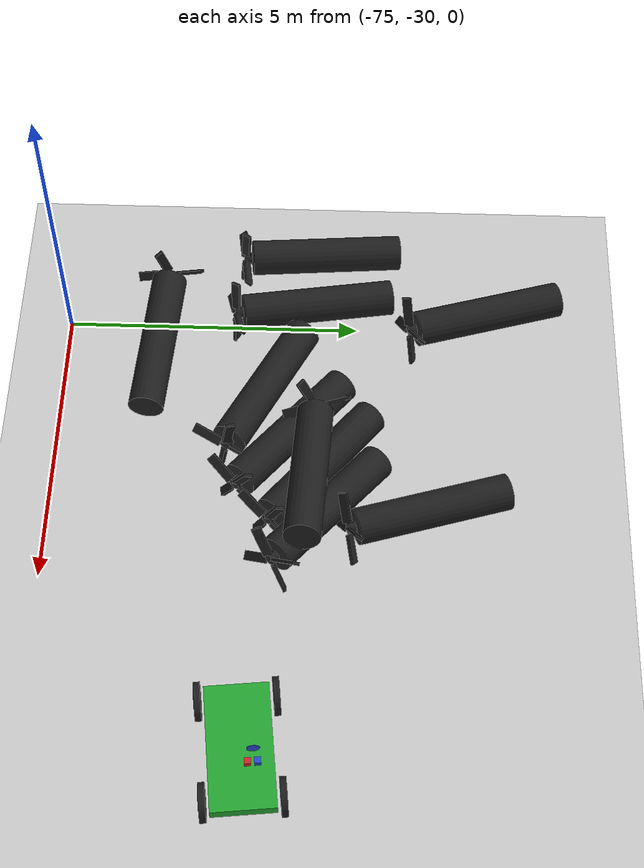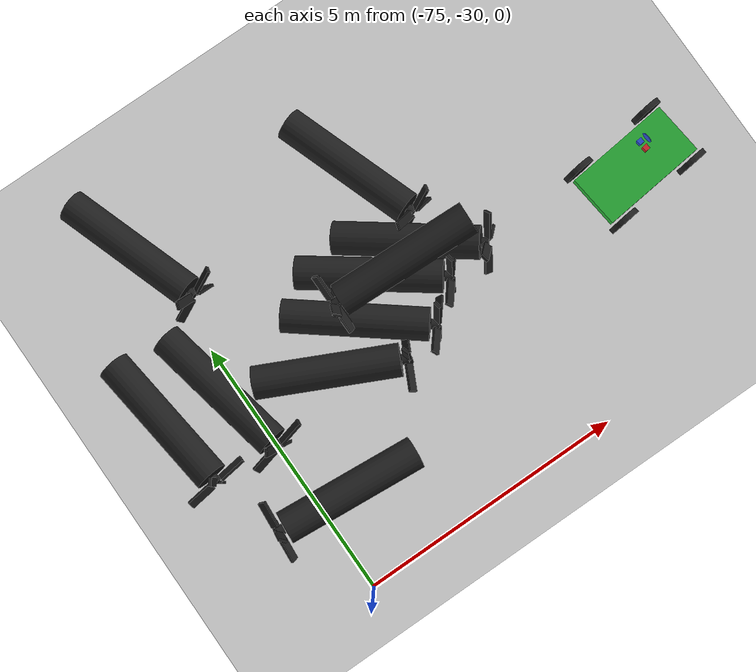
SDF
<sdf version="1.7">
 <world name="default">
  <model name="ground_plane">
   <static>1</static>
   <link name="link">
    <collision name="collision">
     <geometry><plane><normal>0 0 1</normal><size>100 100</size></plane></geometry>
     <surface><friction><ode><mu>100</mu><mu2>50</mu2></ode></friction></surface>
    </collision>
    <visual name="visual">
     <cast_shadows>0</cast_shadows>
     <geometry><plane><normal>0 0 1</normal><size>100 100</size></plane></geometry>
     <material>
      <script><uri>file://media/materials/scripts/gazebo.material</uri><name>Gazebo/Grey</name></script>
     </material>
    </visual>
   </link>
  </model>
  <model name="car_1">
   <link name="chassis">
    <pose>0 0 0.3 0 -0 0</pose>
    <collision name="collision"><geometry><box><size>2 1 0.2</size></box></geometry></collision>
    <visual name="visual">
     <geometry><box><size>2 1 0.2</size></box></geometry>
     <material>
      <script><uri>file://media/materials/scripts/gazebo.material</uri><name>Gazebo/Green</name></script>
     </material>
    </visual>
    <inertial>
     <inertia><ixx>1</ixx><ixy>0</ixy><ixz>0</ixz><iyy>1</iyy><iyz>0</iyz><izz>1</izz></inertia>
     <mass>1</mass>
    </inertial>
   </link>
   <link name="front_left_wheel">
    <pose>0.8 0.6 0.3 -0 1.5707 1.5707</pose>
    <collision name="collision">
     <geometry><cylinder><radius>0.3</radius><length>0.1</length></cylinder></geometry>
    </collision>
    <visual name="visual">
     <geometry><cylinder><radius>0.3</radius><length>0.1</length></cylinder></geometry>
     <material>
      <script><uri>file://media/materials/scripts/gazebo.material</uri><name>Gazebo/Black</name></script>
     </material>
    </visual>
    <inertial>
     <inertia><ixx>1</ixx><ixy>0</ixy><ixz>0</ixz><iyy>1</iyy><iyz>0</iyz><izz>1</izz></inertia>
     <mass>1</mass>
    </inertial>
   </link>
   <link name="front_right_wheel">
    <pose>0.8 -0.6 0.3 -0 1.5707 1.5707</pose>
    <collision name="collision">
     <geometry><cylinder><radius>0.3</radius><length>0.1</length></cylinder></geometry>
    </collision>
    <visual name="visual">
     <geometry><cylinder><radius>0.3</radius><length>0.1</length></cylinder></geometry>
     <material>
      <script><uri>file://media/materials/scripts/gazebo.material</uri><name>Gazebo/Black</name></script>
     </material>
    </visual>
    <inertial>
     <inertia><ixx>1</ixx><ixy>0</ixy><ixz>0</ixz><iyy>1</iyy><iyz>0</iyz><izz>1</izz></inertia>
     <mass>1</mass>
    </inertial>
   </link>
   <link name="back_right_wheel">
    <pose>-0.8 -0.6 0.3 -0 1.5707 1.5707</pose>
    <collision name="collision">
     <geometry><cylinder><radius>0.3</radius><length>0.1</length></cylinder></geometry>
    </collision>
    <visual name="visual">
     <geometry><cylinder><radius>0.3</radius><length>0.1</length></cylinder></geometry>
     <material>
      <script><uri>file://media/materials/scripts/gazebo.material</uri><name>Gazebo/Black</name></script>
     </material>
    </visual>
    <inertial>
     <inertia><ixx>1</ixx><ixy>0</ixy><ixz>0</ixz><iyy>1</iyy><iyz>0</iyz><izz>1</izz></inertia>
     <mass>1</mass>
    </inertial>
   </link>
   <link name="back_left_wheel">
    <pose>-0.8 0.6 0.3 -0 1.5707 1.5707</pose>
    <collision name="collision">
     <geometry><cylinder><radius>0.3</radius><length>0.1</length></cylinder></geometry>
    </collision>
    <visual name="visual">
     <geometry><cylinder><radius>0.3</radius><length>0.1</length></cylinder></geometry>
     <material>
      <script><uri>file://media/materials/scripts/gazebo.material</uri><name>Gazebo/Black</name></script>
     </material>
    </visual>
    <inertial>
     <inertia><ixx>1</ixx><ixy>0</ixy><ixz>0</ixz><iyy>1</iyy><iyz>0</iyz><izz>1</izz></inertia>
     <mass>1</mass>
    </inertial>
   </link>
   <link name="gas_pedal">
    <pose>0.3 0.1 0.5 0 -0 0</pose>
    <collision name="collision"><geometry><box><size>0.1 0.1 0.1</size></box></geometry></collision>
    <visual name="visual">
     <geometry><box><size>0.1 0.1 0.1</size></box></geometry>
     <material>
      <script><uri>file://media/materials/scripts/gazebo.material</uri><name>Gazebo/Red</name></script>
     </material>
    </visual>
    <inertial>
     <inertia><ixx>1</ixx><ixy>0</ixy><ixz>0</ixz><iyy>1</iyy><iyz>0</iyz><izz>1</izz></inertia>
     <mass>1</mass>
    </inertial>
   </link>
   <link name="brake_pedal">
    <pose>0.3 0.25 0.5 0 -0 0</pose>
    <collision name="collision"><geometry><box><size>0.1 0.1 0.1</size></box></geometry></collision>
    <visual name="visual">
     <geometry><box><size>0.1 0.1 0.1</size></box></geometry>
     <material>
      <script><uri>file://media/materials/scripts/gazebo.material</uri><name>Gazebo/Blue</name></script>
     </material>
    </visual>
    <inertial>
     <inertia><ixx>1</ixx><ixy>0</ixy><ixz>0</ixz><iyy>1</iyy><iyz>0</iyz><izz>1</izz></inertia>
     <mass>1</mass>
    </inertial>
   </link>
   <link name="steering_wheel">
    <pose>0.3 0.2 1 0 1.5707 0</pose>
    <collision name="collision">
     <geometry><cylinder><radius>0.1</radius><length>0.01</length></cylinder></geometry>
    </collision>
    <visual name="visual">
     <geometry><cylinder><radius>0.1</radius><length>0.01</length></cylinder></geometry>
     <material>
      <script><uri>file://media/materials/scripts/gazebo.material</uri><name>Gazebo/Blue</name></script>
     </material>
    </visual>
    <inertial>
     <inertia><ixx>1</ixx><ixy>0</ixy><ixz>0</ixz><iyy>1</iyy><iyz>0</iyz><izz>1</izz></inertia>
     <mass>1</mass>
    </inertial>
   </link>
   <joint name="gas_joint" type="prismatic">
    <parent>chassis</parent>
    <child>gas_pedal</child>
    <axis>
     <xyz expressed_in="__model__">1 0 0</xyz>
     <limit><lower>0</lower><upper>0.2</upper></limit>
     <dynamics><spring_reference>0</spring_reference><spring_stiffness>0</spring_stiffness></dynamics>
    </axis>
   </joint>
   <joint name="brake_joint" type="prismatic">
    <parent>chassis</parent>
    <child>brake_pedal</child>
    <axis>
     <xyz expressed_in="__model__">1 0 0</xyz>
     <limit><lower>0</lower><upper>0.2</upper></limit>
     <dynamics><spring_reference>0</spring_reference><spring_stiffness>0</spring_stiffness></dynamics>
    </axis>
   </joint>
   <joint name="steering_joint" type="revolute">
    <parent>chassis</parent>
    <child>steering_wheel</child>
    <axis>
     <xyz expressed_in="__model__">1 0 0</xyz>
     <limit><lower>-7.853</lower><upper>7.853</upper></limit>
     <dynamics><spring_reference>0</spring_reference><spring_stiffness>0</spring_stiffness></dynamics>
    </axis>
   </joint>
   <joint name="front_left_joint" type="revolute2">
    <parent>chassis</parent>
    <child>front_left_wheel</child>
    <axis>
     <xyz expressed_in="__model__">0 0 1</xyz>
     <limit><lower>8.06786e-05</lower><upper>8.06786e-05</upper></limit>
     <dynamics><spring_reference>0</spring_reference><spring_stiffness>0</spring_stiffness></dynamics>
    </axis>
    <axis2>
     <xyz expressed_in="__model__">0 1 0</xyz>
     <limit><upper>1e+16</upper><lower>-1e+16</lower></limit>
     <dynamics><spring_reference>0</spring_reference><spring_stiffness>0</spring_stiffness></dynamics>
    </axis2>
    <physics><ode><limit><cfm>0</cfm><erp>0.9</erp></limit></ode></physics>
   </joint>
   <joint name="front_right_joint" type="revolute2">
    <parent>chassis</parent>
    <child>front_right_wheel</child>
    <axis>
     <xyz expressed_in="__model__">0 0 1</xyz>
     <limit><lower>8.06786e-05</lower><upper>8.06786e-05</upper></limit>
     <dynamics><spring_reference>0</spring_reference><spring_stiffness>0</spring_stiffness></dynamics>
    </axis>
    <axis2>
     <xyz expressed_in="__model__">0 1 0</xyz>
     <limit><upper>1e+16</upper><lower>-1e+16</lower></limit>
     <dynamics><spring_reference>0</spring_reference><spring_stiffness>0</spring_stiffness></dynamics>
    </axis2>
    <physics><ode><limit><cfm>0</cfm><erp>0.9</erp></limit></ode></physics>
   </joint>
   <joint name="back_right_joint" type="revolute2">
    <parent>chassis</parent>
    <child>back_right_wheel</child>
    <axis>
     <xyz expressed_in="__model__">0 0 1</xyz>
     <limit><lower>0</lower><upper>0</upper></limit>
     <dynamics><spring_reference>0</spring_reference><spring_stiffness>0</spring_stiffness></dynamics>
    </axis>
    <axis2>
     <xyz expressed_in="__model__">0 1 0</xyz>
     <limit><upper>1e+16</upper><lower>-1e+16</lower></limit>
     <dynamics><spring_reference>0</spring_reference><spring_stiffness>0</spring_stiffness></dynamics>
    </axis2>
    <physics><ode><limit><cfm>0</cfm><erp>0.9</erp></limit></ode></physics>
   </joint>
   <joint name="back_left_joint" type="revolute2">
    <parent>chassis</parent>
    <child>back_left_wheel</child>
    <axis>
     <xyz expressed_in="__model__">0 0 1</xyz>
     <limit><lower>0</lower><upper>0</upper></limit>
     <dynamics><spring_reference>0</spring_reference><spring_stiffness>0</spring_stiffness></dynamics>
    </axis>
    <axis2>
     <xyz expressed_in="__model__">0 1 0</xyz>
     <limit><upper>1e+16</upper><lower>-1e+16</lower></limit>
     <dynamics><spring_reference>0</spring_reference><spring_stiffness>0</spring_stiffness></dynamics>
    </axis2>
    <physics><ode><limit><cfm>0</cfm><erp>0.9</erp></limit></ode></physics>
   </joint>
   <plugin name="vehicle" filename="libVehiclePlugin.so">
    <front_left>front_left_joint</front_left>
    <front_right>front_right_joint</front_right>
    <back_left>back_left_joint</back_left>
    <back_right>back_right_joint</back_right>
    <gas>gas_joint</gas>
    <brake>brake_joint</brake>
    <steering>steering_joint</steering>
    <front_power>10</front_power>
    <rear_power>10</rear_power>
    <tire_angle_range>0.5</tire_angle_range>
    <max_speed>10</max_speed>
    <aero_load>0.1</aero_load>
   </plugin>
   <pose>-67.0244 -26.5911 0.010006 0 2e-06 0.109555</pose>
  </model>
  <model name="submarine_sinking_0">
   <pose>-70.8442 -24.7328 0.463488 1.47985 -0.776747 0.392749</pose>
   <link name="body">
    <pose>0 0 -1.07935 0 -0 0</pose>
    <inertial>
     <mass>1102.7</mass>
     <inertia><ixx>645.998</ixx><ixy>0</ixy><ixz>0</ixz><iyy>645.998</iyy><iyz>0</iyz><izz>49.6215</izz></inertia>
    </inertial>
    <visual name="body_visual">
     <geometry><cylinder><radius>0.3</radius><length>2.6</length></cylinder></geometry>
     <material>
      <script><uri>file://media/materials/scripts/gazebo.material</uri><name>Gazebo/Black</name></script>
     </material>
    </visual>
    <collision name="body_collision">
     <geometry><cylinder><radius>0.3</radius><length>2.6</length></cylinder></geometry>
    </collision>
    <visual name="spacer_visual">
     <pose>0 0 1.37855 0 -0 0</pose>
     <geometry><cylinder><radius>0.0933402</radius><length>0.127211</length></cylinder></geometry>
     <material>
      <script><uri>file://media/materials/scripts/gazebo.material</uri><name>Gazebo/Black</name></script>
     </material>
    </visual>
   </link>
   <link name="propeller">
    <pose>0 0 0.3455 3.14159 -0 0</pose>
    <inertial>
     <mass>25.2312</mass>
     <inertia><ixx>0.531907</ixx><ixy>0</ixy><ixz>0</ixz><iyy>0.531907</iyy><iyz>0</iyz><izz>1.0513</izz></inertia>
    </inertial>
    <visual name="blade1_visual">
     <pose>0.34334 0 0 0.785398 -0 0</pose>
     <geometry><box><size>0.5 0.154178 0.05455</size></box></geometry>
     <material>
      <script><uri>file://media/materials/scripts/gazebo.material</uri><name>Gazebo/Black</name></script>
     </material>
    </visual>
    <collision name="blade1_collision">
     <pose>0.34334 0 0 0.785398 -0 0</pose>
     <geometry><box><size>0.5 0.154178 0.05455</size></box></geometry>
    </collision>
    <visual name="blade2_visual">
     <pose>0 0.34334 0 0.785398 0 1.5708</pose>
     <geometry><box><size>0.5 0.154178 0.05455</size></box></geometry>
     <material>
      <script><uri>file://media/materials/scripts/gazebo.material</uri><name>Gazebo/Black</name></script>
     </material>
    </visual>
    <collision name="blade2_collision">
     <pose>0 0.34334 0 0.785398 0 1.5708</pose>
     <geometry><box><size>0.5 0.154178 0.05455</size></box></geometry>
    </collision>
    <visual name="blade3_visual">
     <pose>-0.34334 -0 0 -0.785398 0 0</pose>
     <geometry><box><size>0.5 0.154178 0.05455</size></box></geometry>
     <material>
      <script><uri>file://media/materials/scripts/gazebo.material</uri><name>Gazebo/Black</name></script>
     </material>
    </visual>
    <collision name="blade3_collision">
     <pose>-0.34334 -0 0 -0.785398 0 0</pose>
     <geometry><box><size>0.5 0.154178 0.05455</size></box></geometry>
    </collision>
    <visual name="blade4_visual">
     <pose>-0 -0.34334 0 -0.785398 -0 1.5708</pose>
     <geometry><box><size>0.5 0.154178 0.05455</size></box></geometry>
     <material>
      <script><uri>file://media/materials/scripts/gazebo.material</uri><name>Gazebo/Black</name></script>
     </material>
    </visual>
    <collision name="blade4_collision">
     <pose>-0 -0.34334 0 -0.785398 -0 1.5708</pose>
     <geometry><box><size>0.5 0.154178 0.05455</size></box></geometry>
    </collision>
   </link>
   <joint name="spinning_joint" type="revolute">
    <parent>body</parent>
    <child>propeller</child>
    <axis>
     <xyz expressed_in="__model__">0 0 1</xyz>
     <limit><lower>-1e+12</lower><upper>1e+12</upper><effort>-1</effort><velocity>-1</velocity></limit>
     <dynamics><spring_reference>0</spring_reference><spring_stiffness>0</spring_stiffness></dynamics>
    </axis>
   </joint>
   <plugin name="buoyancy" filename="libBuoyancyPlugin.so"><fluid_density>999.1026</fluid_density></plugin>
  </model>
  <model name="submarine_sinking_0_clone">
   <pose>-71.1148 -26.1575 0.511886 -1.47733 -0.41755 -2.25016</pose>
   <link name="body">
    <pose>0 0 -1.07935 0 -0 0</pose>
    <inertial>
     <mass>1102.7</mass>
     <inertia><ixx>645.998</ixx><ixy>0</ixy><ixz>0</ixz><iyy>645.998</iyy><iyz>0</iyz><izz>49.6215</izz></inertia>
    </inertial>
    <visual name="body_visual">
     <geometry><cylinder><radius>0.3</radius><length>2.6</length></cylinder></geometry>
     <material>
      <script><uri>file://media/materials/scripts/gazebo.material</uri><name>Gazebo/Black</name></script>
     </material>
    </visual>
    <collision name="body_collision">
     <geometry><cylinder><radius>0.3</radius><length>2.6</length></cylinder></geometry>
    </collision>
    <visual name="spacer_visual">
     <pose>0 0 1.37855 0 -0 0</pose>
     <geometry><cylinder><radius>0.0933402</radius><length>0.127211</length></cylinder></geometry>
     <material>
      <script><uri>file://media/materials/scripts/gazebo.material</uri><name>Gazebo/Black</name></script>
     </material>
    </visual>
   </link>
   <link name="propeller">
    <pose>0 0 0.3455 3.14159 -0 0</pose>
    <inertial>
     <mass>25.2312</mass>
     <inertia><ixx>0.531907</ixx><ixy>0</ixy><ixz>0</ixz><iyy>0.531907</iyy><iyz>0</iyz><izz>1.0513</izz></inertia>
    </inertial>
    <visual name="blade1_visual">
     <pose>0.34334 0 0 0.785398 -0 0</pose>
     <geometry><box><size>0.5 0.154178 0.05455</size></box></geometry>
     <material>
      <script><uri>file://media/materials/scripts/gazebo.material</uri><name>Gazebo/Black</name></script>
     </material>
    </visual>
    <collision name="blade1_collision">
     <pose>0.34334 0 0 0.785398 -0 0</pose>
     <geometry><box><size>0.5 0.154178 0.05455</size></box></geometry>
    </collision>
    <visual name="blade2_visual">
     <pose>0 0.34334 0 0.785398 0 1.5708</pose>
     <geometry><box><size>0.5 0.154178 0.05455</size></box></geometry>
     <material>
      <script><uri>file://media/materials/scripts/gazebo.material</uri><name>Gazebo/Black</name></script>
     </material>
    </visual>
    <collision name="blade2_collision">
     <pose>0 0.34334 0 0.785398 0 1.5708</pose>
     <geometry><box><size>0.5 0.154178 0.05455</size></box></geometry>
    </collision>
    <visual name="blade3_visual">
     <pose>-0.34334 -0 0 -0.785398 0 0</pose>
     <geometry><box><size>0.5 0.154178 0.05455</size></box></geometry>
     <material>
      <script><uri>file://media/materials/scripts/gazebo.material</uri><name>Gazebo/Black</name></script>
     </material>
    </visual>
    <collision name="blade3_collision">
     <pose>-0.34334 -0 0 -0.785398 0 0</pose>
     <geometry><box><size>0.5 0.154178 0.05455</size></box></geometry>
    </collision>
    <visual name="blade4_visual">
     <pose>-0 -0.34334 0 -0.785398 -0 1.5708</pose>
     <geometry><box><size>0.5 0.154178 0.05455</size></box></geometry>
     <material>
      <script><uri>file://media/materials/scripts/gazebo.material</uri><name>Gazebo/Black</name></script>
     </material>
    </visual>
    <collision name="blade4_collision">
     <pose>-0 -0.34334 0 -0.785398 -0 1.5708</pose>
     <geometry><box><size>0.5 0.154178 0.05455</size></box></geometry>
    </collision>
   </link>
   <joint name="spinning_joint" type="revolute">
    <parent>body</parent>
    <child>propeller</child>
    <axis>
     <xyz expressed_in="__model__">0 0 1</xyz>
     <limit><lower>-1e+12</lower><upper>1e+12</upper><effort>-1</effort><velocity>-1</velocity></limit>
     <dynamics><spring_reference>0</spring_reference><spring_stiffness>0</spring_stiffness></dynamics>
    </axis>
   </joint>
   <plugin name="buoyancy" filename="libBuoyancyPlugin.so"><fluid_density>999.1026</fluid_density></plugin>
  </model>
  <model name="submarine_sinking_0_clone_0">
   <pose>-71.7803 -26.7021 0.45906 -1.4991 -0.499068 -2.27634</pose>
   <link name="body">
    <pose>0 0 -1.07935 0 -0 0</pose>
    <inertial>
     <mass>1102.7</mass>
     <inertia><ixx>645.998</ixx><ixy>0</ixy><ixz>0</ixz><iyy>645.998</iyy><iyz>0</iyz><izz>49.6215</izz></inertia>
    </inertial>
    <visual name="body_visual">
     <geometry><cylinder><radius>0.3</radius><length>2.6</length></cylinder></geometry>
     <material>
      <script><uri>file://media/materials/scripts/gazebo.material</uri><name>Gazebo/Black</name></script>
     </material>
    </visual>
    <collision name="body_collision">
     <geometry><cylinder><radius>0.3</radius><length>2.6</length></cylinder></geometry>
    </collision>
    <visual name="spacer_visual">
     <pose>0 0 1.37855 0 -0 0</pose>
     <geometry><cylinder><radius>0.0933402</radius><length>0.127211</length></cylinder></geometry>
     <material>
      <script><uri>file://media/materials/scripts/gazebo.material</uri><name>Gazebo/Black</name></script>
     </material>
    </visual>
   </link>
   <link name="propeller">
    <pose>0 0 0.3455 3.14159 -0 0</pose>
    <inertial>
     <mass>25.2312</mass>
     <inertia><ixx>0.531907</ixx><ixy>0</ixy><ixz>0</ixz><iyy>0.531907</iyy><iyz>0</iyz><izz>1.0513</izz></inertia>
    </inertial>
    <visual name="blade1_visual">
     <pose>0.34334 0 0 0.785398 -0 0</pose>
     <geometry><box><size>0.5 0.154178 0.05455</size></box></geometry>
     <material>
      <script><uri>file://media/materials/scripts/gazebo.material</uri><name>Gazebo/Black</name></script>
     </material>
    </visual>
    <collision name="blade1_collision">
     <pose>0.34334 0 0 0.785398 -0 0</pose>
     <geometry><box><size>0.5 0.154178 0.05455</size></box></geometry>
    </collision>
    <visual name="blade2_visual">
     <pose>0 0.34334 0 0.785398 0 1.5708</pose>
     <geometry><box><size>0.5 0.154178 0.05455</size></box></geometry>
     <material>
      <script><uri>file://media/materials/scripts/gazebo.material</uri><name>Gazebo/Black</name></script>
     </material>
    </visual>
    <collision name="blade2_collision">
     <pose>0 0.34334 0 0.785398 0 1.5708</pose>
     <geometry><box><size>0.5 0.154178 0.05455</size></box></geometry>
    </collision>
    <visual name="blade3_visual">
     <pose>-0.34334 -0 0 -0.785398 0 0</pose>
     <geometry><box><size>0.5 0.154178 0.05455</size></box></geometry>
     <material>
      <script><uri>file://media/materials/scripts/gazebo.material</uri><name>Gazebo/Black</name></script>
     </material>
    </visual>
    <collision name="blade3_collision">
     <pose>-0.34334 -0 0 -0.785398 0 0</pose>
     <geometry><box><size>0.5 0.154178 0.05455</size></box></geometry>
    </collision>
    <visual name="blade4_visual">
     <pose>-0 -0.34334 0 -0.785398 -0 1.5708</pose>
     <geometry><box><size>0.5 0.154178 0.05455</size></box></geometry>
     <material>
      <script><uri>file://media/materials/scripts/gazebo.material</uri><name>Gazebo/Black</name></script>
     </material>
    </visual>
    <collision name="blade4_collision">
     <pose>-0 -0.34334 0 -0.785398 -0 1.5708</pose>
     <geometry><box><size>0.5 0.154178 0.05455</size></box></geometry>
    </collision>
   </link>
   <joint name="spinning_joint" type="revolute">
    <parent>body</parent>
    <child>propeller</child>
    <axis>
     <xyz expressed_in="__model__">0 0 1</xyz>
     <limit><lower>-1e+12</lower><upper>1e+12</upper><effort>-1</effort><velocity>-1</velocity></limit>
     <dynamics><spring_reference>0</spring_reference><spring_stiffness>0</spring_stiffness></dynamics>
    </axis>
   </joint>
   <plugin name="buoyancy" filename="libBuoyancyPlugin.so"><fluid_density>999.1026</fluid_density></plugin>
  </model>
  <model name="submarine_sinking_0_clone_1">
   <pose>-72.575 -26.9592 0.459062 -1.50707 -0.157686 -2.03511</pose>
   <link name="body">
    <pose>0 0 -1.07935 0 -0 0</pose>
    <inertial>
     <mass>1102.7</mass>
     <inertia><ixx>645.998</ixx><ixy>0</ixy><ixz>0</ixz><iyy>645.998</iyy><iyz>0</iyz><izz>49.6215</izz></inertia>
    </inertial>
    <visual name="body_visual">
     <geometry><cylinder><radius>0.3</radius><length>2.6</length></cylinder></geometry>
     <material>
      <script><uri>file://media/materials/scripts/gazebo.material</uri><name>Gazebo/Black</name></script>
     </material>
    </visual>
    <collision name="body_collision">
     <geometry><cylinder><radius>0.3</radius><length>2.6</length></cylinder></geometry>
    </collision>
    <visual name="spacer_visual">
     <pose>0 0 1.37855 0 -0 0</pose>
     <geometry><cylinder><radius>0.0933402</radius><length>0.127211</length></cylinder></geometry>
     <material>
      <script><uri>file://media/materials/scripts/gazebo.material</uri><name>Gazebo/Black</name></script>
     </material>
    </visual>
   </link>
   <link name="propeller">
    <pose>0 0 0.3455 3.14159 -0 0</pose>
    <inertial>
     <mass>25.2312</mass>
     <inertia><ixx>0.531907</ixx><ixy>0</ixy><ixz>0</ixz><iyy>0.531907</iyy><iyz>0</iyz><izz>1.0513</izz></inertia>
    </inertial>
    <visual name="blade1_visual">
     <pose>0.34334 0 0 0.785398 -0 0</pose>
     <geometry><box><size>0.5 0.154178 0.05455</size></box></geometry>
     <material>
      <script><uri>file://media/materials/scripts/gazebo.material</uri><name>Gazebo/Black</name></script>
     </material>
    </visual>
    <collision name="blade1_collision">
     <pose>0.34334 0 0 0.785398 -0 0</pose>
     <geometry><box><size>0.5 0.154178 0.05455</size></box></geometry>
    </collision>
    <visual name="blade2_visual">
     <pose>0 0.34334 0 0.785398 0 1.5708</pose>
     <geometry><box><size>0.5 0.154178 0.05455</size></box></geometry>
     <material>
      <script><uri>file://media/materials/scripts/gazebo.material</uri><name>Gazebo/Black</name></script>
     </material>
    </visual>
    <collision name="blade2_collision">
     <pose>0 0.34334 0 0.785398 0 1.5708</pose>
     <geometry><box><size>0.5 0.154178 0.05455</size></box></geometry>
    </collision>
    <visual name="blade3_visual">
     <pose>-0.34334 -0 0 -0.785398 0 0</pose>
     <geometry><box><size>0.5 0.154178 0.05455</size></box></geometry>
     <material>
      <script><uri>file://media/materials/scripts/gazebo.material</uri><name>Gazebo/Black</name></script>
     </material>
    </visual>
    <collision name="blade3_collision">
     <pose>-0.34334 -0 0 -0.785398 0 0</pose>
     <geometry><box><size>0.5 0.154178 0.05455</size></box></geometry>
    </collision>
    <visual name="blade4_visual">
     <pose>-0 -0.34334 0 -0.785398 -0 1.5708</pose>
     <geometry><box><size>0.5 0.154178 0.05455</size></box></geometry>
     <material>
      <script><uri>file://media/materials/scripts/gazebo.material</uri><name>Gazebo/Black</name></script>
     </material>
    </visual>
    <collision name="blade4_collision">
     <pose>-0 -0.34334 0 -0.785398 -0 1.5708</pose>
     <geometry><box><size>0.5 0.154178 0.05455</size></box></geometry>
    </collision>
   </link>
   <joint name="spinning_joint" type="revolute">
    <parent>body</parent>
    <child>propeller</child>
    <axis>
     <xyz expressed_in="__model__">0 0 1</xyz>
     <limit><lower>-1e+12</lower><upper>1e+12</upper><effort>-1</effort><velocity>-1</velocity></limit>
     <dynamics><spring_reference>0</spring_reference><spring_stiffness>0</spring_stiffness></dynamics>
    </axis>
   </joint>
   <plugin name="buoyancy" filename="libBuoyancyPlugin.so"><fluid_density>999.1026</fluid_density></plugin>
  </model>
  <model name="submarine_sinking_0_clone_2">
   <pose>-72.4507 -25.6581 0.948541 1.89347 -1.0975 -1.91044</pose>
   <link name="body">
    <pose>0 0 -1.07935 0 -0 0</pose>
    <inertial>
     <mass>1102.7</mass>
     <inertia><ixx>645.998</ixx><ixy>0</ixy><ixz>0</ixz><iyy>645.998</iyy><iyz>0</iyz><izz>49.6215</izz></inertia>
    </inertial>
    <visual name="body_visual">
     <geometry><cylinder><radius>0.3</radius><length>2.6</length></cylinder></geometry>
     <material>
      <script><uri>file://media/materials/scripts/gazebo.material</uri><name>Gazebo/Black</name></script>
     </material>
    </visual>
    <collision name="body_collision">
     <geometry><cylinder><radius>0.3</radius><length>2.6</length></cylinder></geometry>
    </collision>
    <visual name="spacer_visual">
     <pose>0 0 1.37855 0 -0 0</pose>
     <geometry><cylinder><radius>0.0933402</radius><length>0.127211</length></cylinder></geometry>
     <material>
      <script><uri>file://media/materials/scripts/gazebo.material</uri><name>Gazebo/Black</name></script>
     </material>
    </visual>
   </link>
   <link name="propeller">
    <pose>0 0 0.3455 3.14159 -0 0</pose>
    <inertial>
     <mass>25.2312</mass>
     <inertia><ixx>0.531907</ixx><ixy>0</ixy><ixz>0</ixz><iyy>0.531907</iyy><iyz>0</iyz><izz>1.0513</izz></inertia>
    </inertial>
    <visual name="blade1_visual">
     <pose>0.34334 0 0 0.785398 -0 0</pose>
     <geometry><box><size>0.5 0.154178 0.05455</size></box></geometry>
     <material>
      <script><uri>file://media/materials/scripts/gazebo.material</uri><name>Gazebo/Black</name></script>
     </material>
    </visual>
    <collision name="blade1_collision">
     <pose>0.34334 0 0 0.785398 -0 0</pose>
     <geometry><box><size>0.5 0.154178 0.05455</size></box></geometry>
    </collision>
    <visual name="blade2_visual">
     <pose>0 0.34334 0 0.785398 0 1.5708</pose>
     <geometry><box><size>0.5 0.154178 0.05455</size></box></geometry>
     <material>
      <script><uri>file://media/materials/scripts/gazebo.material</uri><name>Gazebo/Black</name></script>
     </material>
    </visual>
    <collision name="blade2_collision">
     <pose>0 0.34334 0 0.785398 0 1.5708</pose>
     <geometry><box><size>0.5 0.154178 0.05455</size></box></geometry>
    </collision>
    <visual name="blade3_visual">
     <pose>-0.34334 -0 0 -0.785398 0 0</pose>
     <geometry><box><size>0.5 0.154178 0.05455</size></box></geometry>
     <material>
      <script><uri>file://media/materials/scripts/gazebo.material</uri><name>Gazebo/Black</name></script>
     </material>
    </visual>
    <collision name="blade3_collision">
     <pose>-0.34334 -0 0 -0.785398 0 0</pose>
     <geometry><box><size>0.5 0.154178 0.05455</size></box></geometry>
    </collision>
    <visual name="blade4_visual">
     <pose>-0 -0.34334 0 -0.785398 -0 1.5708</pose>
     <geometry><box><size>0.5 0.154178 0.05455</size></box></geometry>
     <material>
      <script><uri>file://media/materials/scripts/gazebo.material</uri><name>Gazebo/Black</name></script>
     </material>
    </visual>
    <collision name="blade4_collision">
     <pose>-0 -0.34334 0 -0.785398 -0 1.5708</pose>
     <geometry><box><size>0.5 0.154178 0.05455</size></box></geometry>
    </collision>
   </link>
   <joint name="spinning_joint" type="revolute">
    <parent>body</parent>
    <child>propeller</child>
    <axis>
     <xyz expressed_in="__model__">0 0 1</xyz>
     <limit><lower>-1e+12</lower><upper>1e+12</upper><effort>-1</effort><velocity>-1</velocity></limit>
     <dynamics><spring_reference>0</spring_reference><spring_stiffness>0</spring_stiffness></dynamics>
    </axis>
   </joint>
   <plugin name="buoyancy" filename="libBuoyancyPlugin.so"><fluid_density>999.1026</fluid_density></plugin>
  </model>
  <model name="submarine_sinking_0_clone_3">
   <pose>-75.0444 -26.7407 0.459066 -1.37786 -1.23656 -3.12097</pose>
   <link name="body">
    <pose>0 0 -1.07935 0 -0 0</pose>
    <inertial>
     <mass>1102.7</mass>
     <inertia><ixx>645.998</ixx><ixy>0</ixy><ixz>0</ixz><iyy>645.998</iyy><iyz>0</iyz><izz>49.6215</izz></inertia>
    </inertial>
    <visual name="body_visual">
     <geometry><cylinder><radius>0.3</radius><length>2.6</length></cylinder></geometry>
     <material>
      <script><uri>file://media/materials/scripts/gazebo.material</uri><name>Gazebo/Black</name></script>
     </material>
    </visual>
    <collision name="body_collision">
     <geometry><cylinder><radius>0.3</radius><length>2.6</length></cylinder></geometry>
    </collision>
    <visual name="spacer_visual">
     <pose>0 0 1.37855 0 -0 0</pose>
     <geometry><cylinder><radius>0.0933402</radius><length>0.127211</length></cylinder></geometry>
     <material>
      <script><uri>file://media/materials/scripts/gazebo.material</uri><name>Gazebo/Black</name></script>
     </material>
    </visual>
   </link>
   <link name="propeller">
    <pose>0 0 0.3455 3.14159 -0 0</pose>
    <inertial>
     <mass>25.2312</mass>
     <inertia><ixx>0.531907</ixx><ixy>0</ixy><ixz>0</ixz><iyy>0.531907</iyy><iyz>0</iyz><izz>1.0513</izz></inertia>
    </inertial>
    <visual name="blade1_visual">
     <pose>0.34334 0 0 0.785398 -0 0</pose>
     <geometry><box><size>0.5 0.154178 0.05455</size></box></geometry>
     <material>
      <script><uri>file://media/materials/scripts/gazebo.material</uri><name>Gazebo/Black</name></script>
     </material>
    </visual>
    <collision name="blade1_collision">
     <pose>0.34334 0 0 0.785398 -0 0</pose>
     <geometry><box><size>0.5 0.154178 0.05455</size></box></geometry>
    </collision>
    <visual name="blade2_visual">
     <pose>0 0.34334 0 0.785398 0 1.5708</pose>
     <geometry><box><size>0.5 0.154178 0.05455</size></box></geometry>
     <material>
      <script><uri>file://media/materials/scripts/gazebo.material</uri><name>Gazebo/Black</name></script>
     </material>
    </visual>
    <collision name="blade2_collision">
     <pose>0 0.34334 0 0.785398 0 1.5708</pose>
     <geometry><box><size>0.5 0.154178 0.05455</size></box></geometry>
    </collision>
    <visual name="blade3_visual">
     <pose>-0.34334 -0 0 -0.785398 0 0</pose>
     <geometry><box><size>0.5 0.154178 0.05455</size></box></geometry>
     <material>
      <script><uri>file://media/materials/scripts/gazebo.material</uri><name>Gazebo/Black</name></script>
     </material>
    </visual>
    <collision name="blade3_collision">
     <pose>-0.34334 -0 0 -0.785398 0 0</pose>
     <geometry><box><size>0.5 0.154178 0.05455</size></box></geometry>
    </collision>
    <visual name="blade4_visual">
     <pose>-0 -0.34334 0 -0.785398 -0 1.5708</pose>
     <geometry><box><size>0.5 0.154178 0.05455</size></box></geometry>
     <material>
      <script><uri>file://media/materials/scripts/gazebo.material</uri><name>Gazebo/Black</name></script>
     </material>
    </visual>
    <collision name="blade4_collision">
     <pose>-0 -0.34334 0 -0.785398 -0 1.5708</pose>
     <geometry><box><size>0.5 0.154178 0.05455</size></box></geometry>
    </collision>
   </link>
   <joint name="spinning_joint" type="revolute">
    <parent>body</parent>
    <child>propeller</child>
    <axis>
     <xyz expressed_in="__model__">0 0 1</xyz>
     <limit><lower>-1e+12</lower><upper>1e+12</upper><effort>-1</effort><velocity>-1</velocity></limit>
     <dynamics><spring_reference>0</spring_reference><spring_stiffness>0</spring_stiffness></dynamics>
    </axis>
   </joint>
   <plugin name="buoyancy" filename="libBuoyancyPlugin.so"><fluid_density>999.1026</fluid_density></plugin>
  </model>
  <model name="submarine_sinking_0_clone_4">
   <pose>-76.2252 -26.6372 0.459063 -0.652438 -1.49156 2.35309</pose>
   <link name="body">
    <pose>0 0 -1.07935 0 -0 0</pose>
    <inertial>
     <mass>1102.7</mass>
     <inertia><ixx>645.998</ixx><ixy>0</ixy><ixz>0</ixz><iyy>645.998</iyy><iyz>0</iyz><izz>49.6215</izz></inertia>
    </inertial>
    <visual name="body_visual">
     <geometry><cylinder><radius>0.3</radius><length>2.6</length></cylinder></geometry>
     <material>
      <script><uri>file://media/materials/scripts/gazebo.material</uri><name>Gazebo/Black</name></script>
     </material>
    </visual>
    <collision name="body_collision">
     <geometry><cylinder><radius>0.3</radius><length>2.6</length></cylinder></geometry>
    </collision>
    <visual name="spacer_visual">
     <pose>0 0 1.37855 0 -0 0</pose>
     <geometry><cylinder><radius>0.0933402</radius><length>0.127211</length></cylinder></geometry>
     <material>
      <script><uri>file://media/materials/scripts/gazebo.material</uri><name>Gazebo/Black</name></script>
     </material>
    </visual>
   </link>
   <link name="propeller">
    <pose>0 0 0.3455 3.14159 -0 0</pose>
    <inertial>
     <mass>25.2312</mass>
     <inertia><ixx>0.531907</ixx><ixy>0</ixy><ixz>0</ixz><iyy>0.531907</iyy><iyz>0</iyz><izz>1.0513</izz></inertia>
    </inertial>
    <visual name="blade1_visual">
     <pose>0.34334 0 0 0.785398 -0 0</pose>
     <geometry><box><size>0.5 0.154178 0.05455</size></box></geometry>
     <material>
      <script><uri>file://media/materials/scripts/gazebo.material</uri><name>Gazebo/Black</name></script>
     </material>
    </visual>
    <collision name="blade1_collision">
     <pose>0.34334 0 0 0.785398 -0 0</pose>
     <geometry><box><size>0.5 0.154178 0.05455</size></box></geometry>
    </collision>
    <visual name="blade2_visual">
     <pose>0 0.34334 0 0.785398 0 1.5708</pose>
     <geometry><box><size>0.5 0.154178 0.05455</size></box></geometry>
     <material>
      <script><uri>file://media/materials/scripts/gazebo.material</uri><name>Gazebo/Black</name></script>
     </material>
    </visual>
    <collision name="blade2_collision">
     <pose>0 0.34334 0 0.785398 0 1.5708</pose>
     <geometry><box><size>0.5 0.154178 0.05455</size></box></geometry>
    </collision>
    <visual name="blade3_visual">
     <pose>-0.34334 -0 0 -0.785398 0 0</pose>
     <geometry><box><size>0.5 0.154178 0.05455</size></box></geometry>
     <material>
      <script><uri>file://media/materials/scripts/gazebo.material</uri><name>Gazebo/Black</name></script>
     </material>
    </visual>
    <collision name="blade3_collision">
     <pose>-0.34334 -0 0 -0.785398 0 0</pose>
     <geometry><box><size>0.5 0.154178 0.05455</size></box></geometry>
    </collision>
    <visual name="blade4_visual">
     <pose>-0 -0.34334 0 -0.785398 -0 1.5708</pose>
     <geometry><box><size>0.5 0.154178 0.05455</size></box></geometry>
     <material>
      <script><uri>file://media/materials/scripts/gazebo.material</uri><name>Gazebo/Black</name></script>
     </material>
    </visual>
    <collision name="blade4_collision">
     <pose>-0 -0.34334 0 -0.785398 -0 1.5708</pose>
     <geometry><box><size>0.5 0.154178 0.05455</size></box></geometry>
    </collision>
   </link>
   <joint name="spinning_joint" type="revolute">
    <parent>body</parent>
    <child>propeller</child>
    <axis>
     <xyz expressed_in="__model__">0 0 1</xyz>
     <limit><lower>-1e+12</lower><upper>1e+12</upper><effort>-1</effort><velocity>-1</velocity></limit>
     <dynamics><spring_reference>0</spring_reference><spring_stiffness>0</spring_stiffness></dynamics>
    </axis>
   </joint>
   <plugin name="buoyancy" filename="libBuoyancyPlugin.so"><fluid_density>999.1026</fluid_density></plugin>
  </model>
  <model name="submarine_sinking_0_clone_5">
   <pose>-70.2695 -26.0558 0.682046 1.37529 -0.621439 1.02346</pose>
   <link name="body">
    <pose>0 0 -1.07935 0 -0 0</pose>
    <inertial>
     <mass>1102.7</mass>
     <inertia><ixx>645.998</ixx><ixy>0</ixy><ixz>0</ixz><iyy>645.998</iyy><iyz>0</iyz><izz>49.6215</izz></inertia>
    </inertial>
    <visual name="body_visual">
     <geometry><cylinder><radius>0.3</radius><length>2.6</length></cylinder></geometry>
     <material>
      <script><uri>file://media/materials/scripts/gazebo.material</uri><name>Gazebo/Black</name></script>
     </material>
    </visual>
    <collision name="body_collision">
     <geometry><cylinder><radius>0.3</radius><length>2.6</length></cylinder></geometry>
    </collision>
    <visual name="spacer_visual">
     <pose>0 0 1.37855 0 -0 0</pose>
     <geometry><cylinder><radius>0.0933402</radius><length>0.127211</length></cylinder></geometry>
     <material>
      <script><uri>file://media/materials/scripts/gazebo.material</uri><name>Gazebo/Black</name></script>
     </material>
    </visual>
   </link>
   <link name="propeller">
    <pose>0 0 0.3455 3.14159 -0 0</pose>
    <inertial>
     <mass>25.2312</mass>
     <inertia><ixx>0.531907</ixx><ixy>0</ixy><ixz>0</ixz><iyy>0.531907</iyy><iyz>0</iyz><izz>1.0513</izz></inertia>
    </inertial>
    <visual name="blade1_visual">
     <pose>0.34334 0 0 0.785398 -0 0</pose>
     <geometry><box><size>0.5 0.154178 0.05455</size></box></geometry>
     <material>
      <script><uri>file://media/materials/scripts/gazebo.material</uri><name>Gazebo/Black</name></script>
     </material>
    </visual>
    <collision name="blade1_collision">
     <pose>0.34334 0 0 0.785398 -0 0</pose>
     <geometry><box><size>0.5 0.154178 0.05455</size></box></geometry>
    </collision>
    <visual name="blade2_visual">
     <pose>0 0.34334 0 0.785398 0 1.5708</pose>
     <geometry><box><size>0.5 0.154178 0.05455</size></box></geometry>
     <material>
      <script><uri>file://media/materials/scripts/gazebo.material</uri><name>Gazebo/Black</name></script>
     </material>
    </visual>
    <collision name="blade2_collision">
     <pose>0 0.34334 0 0.785398 0 1.5708</pose>
     <geometry><box><size>0.5 0.154178 0.05455</size></box></geometry>
    </collision>
    <visual name="blade3_visual">
     <pose>-0.34334 -0 0 -0.785398 0 0</pose>
     <geometry><box><size>0.5 0.154178 0.05455</size></box></geometry>
     <material>
      <script><uri>file://media/materials/scripts/gazebo.material</uri><name>Gazebo/Black</name></script>
     </material>
    </visual>
    <collision name="blade3_collision">
     <pose>-0.34334 -0 0 -0.785398 0 0</pose>
     <geometry><box><size>0.5 0.154178 0.05455</size></box></geometry>
    </collision>
    <visual name="blade4_visual">
     <pose>-0 -0.34334 0 -0.785398 -0 1.5708</pose>
     <geometry><box><size>0.5 0.154178 0.05455</size></box></geometry>
     <material>
      <script><uri>file://media/materials/scripts/gazebo.material</uri><name>Gazebo/Black</name></script>
     </material>
    </visual>
    <collision name="blade4_collision">
     <pose>-0 -0.34334 0 -0.785398 -0 1.5708</pose>
     <geometry><box><size>0.5 0.154178 0.05455</size></box></geometry>
    </collision>
   </link>
   <joint name="spinning_joint" type="revolute">
    <parent>body</parent>
    <child>propeller</child>
    <axis>
     <xyz expressed_in="__model__">0 0 1</xyz>
     <limit><lower>-1e+12</lower><upper>1e+12</upper><effort>-1</effort><velocity>-1</velocity></limit>
     <dynamics><spring_reference>0</spring_reference><spring_stiffness>0</spring_stiffness></dynamics>
    </axis>
   </joint>
   <plugin name="buoyancy" filename="libBuoyancyPlugin.so"><fluid_density>999.1026</fluid_density></plugin>
  </model>
  <model name="submarine_sinking_0_clone_6">
   <pose>-75.4433 -28.3099 0.459063 1.50515 0.287988 -1.67357</pose>
   <link name="body">
    <pose>0 0 -1.07935 0 -0 0</pose>
    <inertial>
     <mass>1102.7</mass>
     <inertia><ixx>645.998</ixx><ixy>0</ixy><ixz>0</ixz><iyy>645.998</iyy><iyz>0</iyz><izz>49.6215</izz></inertia>
    </inertial>
    <visual name="body_visual">
     <geometry><cylinder><radius>0.3</radius><length>2.6</length></cylinder></geometry>
     <material>
      <script><uri>file://media/materials/scripts/gazebo.material</uri><name>Gazebo/Black</name></script>
     </material>
    </visual>
    <collision name="body_collision">
     <geometry><cylinder><radius>0.3</radius><length>2.6</length></cylinder></geometry>
    </collision>
    <visual name="spacer_visual">
     <pose>0 0 1.37855 0 -0 0</pose>
     <geometry><cylinder><radius>0.0933402</radius><length>0.127211</length></cylinder></geometry>
     <material>
      <script><uri>file://media/materials/scripts/gazebo.material</uri><name>Gazebo/Black</name></script>
     </material>
    </visual>
   </link>
   <link name="propeller">
    <pose>0 0 0.3455 3.14159 -0 0</pose>
    <inertial>
     <mass>25.2312</mass>
     <inertia><ixx>0.531907</ixx><ixy>0</ixy><ixz>0</ixz><iyy>0.531907</iyy><iyz>0</iyz><izz>1.0513</izz></inertia>
    </inertial>
    <visual name="blade1_visual">
     <pose>0.34334 0 0 0.785398 -0 0</pose>
     <geometry><box><size>0.5 0.154178 0.05455</size></box></geometry>
     <material>
      <script><uri>file://media/materials/scripts/gazebo.material</uri><name>Gazebo/Black</name></script>
     </material>
    </visual>
    <collision name="blade1_collision">
     <pose>0.34334 0 0 0.785398 -0 0</pose>
     <geometry><box><size>0.5 0.154178 0.05455</size></box></geometry>
    </collision>
    <visual name="blade2_visual">
     <pose>0 0.34334 0 0.785398 0 1.5708</pose>
     <geometry><box><size>0.5 0.154178 0.05455</size></box></geometry>
     <material>
      <script><uri>file://media/materials/scripts/gazebo.material</uri><name>Gazebo/Black</name></script>
     </material>
    </visual>
    <collision name="blade2_collision">
     <pose>0 0.34334 0 0.785398 0 1.5708</pose>
     <geometry><box><size>0.5 0.154178 0.05455</size></box></geometry>
    </collision>
    <visual name="blade3_visual">
     <pose>-0.34334 -0 0 -0.785398 0 0</pose>
     <geometry><box><size>0.5 0.154178 0.05455</size></box></geometry>
     <material>
      <script><uri>file://media/materials/scripts/gazebo.material</uri><name>Gazebo/Black</name></script>
     </material>
    </visual>
    <collision name="blade3_collision">
     <pose>-0.34334 -0 0 -0.785398 0 0</pose>
     <geometry><box><size>0.5 0.154178 0.05455</size></box></geometry>
    </collision>
    <visual name="blade4_visual">
     <pose>-0 -0.34334 0 -0.785398 -0 1.5708</pose>
     <geometry><box><size>0.5 0.154178 0.05455</size></box></geometry>
     <material>
      <script><uri>file://media/materials/scripts/gazebo.material</uri><name>Gazebo/Black</name></script>
     </material>
    </visual>
    <collision name="blade4_collision">
     <pose>-0 -0.34334 0 -0.785398 -0 1.5708</pose>
     <geometry><box><size>0.5 0.154178 0.05455</size></box></geometry>
    </collision>
   </link>
   <joint name="spinning_joint" type="revolute">
    <parent>body</parent>
    <child>propeller</child>
    <axis>
     <xyz expressed_in="__model__">0 0 1</xyz>
     <limit><lower>-1e+12</lower><upper>1e+12</upper><effort>-1</effort><velocity>-1</velocity></limit>
     <dynamics><spring_reference>0</spring_reference><spring_stiffness>0</spring_stiffness></dynamics>
    </axis>
   </joint>
   <plugin name="buoyancy" filename="libBuoyancyPlugin.so"><fluid_density>999.1026</fluid_density></plugin>
  </model>
  <model name="submarine_sinking_0_clone_7">
   <pose>-74.8019 -23.7643 0.459061 1.496 -0.570441 0.37037</pose>
   <link name="body">
    <pose>0 0 -1.07935 0 -0 0</pose>
    <inertial>
     <mass>1102.7</mass>
     <inertia><ixx>645.998</ixx><ixy>0</ixy><ixz>0</ixz><iyy>645.998</iyy><iyz>0</iyz><izz>49.6215</izz></inertia>
    </inertial>
    <visual name="body_visual">
     <geometry><cylinder><radius>0.3</radius><length>2.6</length></cylinder></geometry>
     <material>
      <script><uri>file://media/materials/scripts/gazebo.material</uri><name>Gazebo/Black</name></script>
     </material>
    </visual>
    <collision name="body_collision">
     <geometry><cylinder><radius>0.3</radius><length>2.6</length></cylinder></geometry>
    </collision>
    <visual name="spacer_visual">
     <pose>0 0 1.37855 0 -0 0</pose>
     <geometry><cylinder><radius>0.0933402</radius><length>0.127211</length></cylinder></geometry>
     <material>
      <script><uri>file://media/materials/scripts/gazebo.material</uri><name>Gazebo/Black</name></script>
     </material>
    </visual>
   </link>
   <link name="propeller">
    <pose>0 0 0.3455 3.14159 -0 0</pose>
    <inertial>
     <mass>25.2312</mass>
     <inertia><ixx>0.531907</ixx><ixy>0</ixy><ixz>0</ixz><iyy>0.531907</iyy><iyz>0</iyz><izz>1.0513</izz></inertia>
    </inertial>
    <visual name="blade1_visual">
     <pose>0.34334 0 0 0.785398 -0 0</pose>
     <geometry><box><size>0.5 0.154178 0.05455</size></box></geometry>
     <material>
      <script><uri>file://media/materials/scripts/gazebo.material</uri><name>Gazebo/Black</name></script>
     </material>
    </visual>
    <collision name="blade1_collision">
     <pose>0.34334 0 0 0.785398 -0 0</pose>
     <geometry><box><size>0.5 0.154178 0.05455</size></box></geometry>
    </collision>
    <visual name="blade2_visual">
     <pose>0 0.34334 0 0.785398 0 1.5708</pose>
     <geometry><box><size>0.5 0.154178 0.05455</size></box></geometry>
     <material>
      <script><uri>file://media/materials/scripts/gazebo.material</uri><name>Gazebo/Black</name></script>
     </material>
    </visual>
    <collision name="blade2_collision">
     <pose>0 0.34334 0 0.785398 0 1.5708</pose>
     <geometry><box><size>0.5 0.154178 0.05455</size></box></geometry>
    </collision>
    <visual name="blade3_visual">
     <pose>-0.34334 -0 0 -0.785398 0 0</pose>
     <geometry><box><size>0.5 0.154178 0.05455</size></box></geometry>
     <material>
      <script><uri>file://media/materials/scripts/gazebo.material</uri><name>Gazebo/Black</name></script>
     </material>
    </visual>
    <collision name="blade3_collision">
     <pose>-0.34334 -0 0 -0.785398 0 0</pose>
     <geometry><box><size>0.5 0.154178 0.05455</size></box></geometry>
    </collision>
    <visual name="blade4_visual">
     <pose>-0 -0.34334 0 -0.785398 -0 1.5708</pose>
     <geometry><box><size>0.5 0.154178 0.05455</size></box></geometry>
     <material>
      <script><uri>file://media/materials/scripts/gazebo.material</uri><name>Gazebo/Black</name></script>
     </material>
    </visual>
    <collision name="blade4_collision">
     <pose>-0 -0.34334 0 -0.785398 -0 1.5708</pose>
     <geometry><box><size>0.5 0.154178 0.05455</size></box></geometry>
    </collision>
   </link>
   <joint name="spinning_joint" type="revolute">
    <parent>body</parent>
    <child>propeller</child>
    <axis>
     <xyz expressed_in="__model__">0 0 1</xyz>
     <limit><lower>-1e+12</lower><upper>1e+12</upper><effort>-1</effort><velocity>-1</velocity></limit>
     <dynamics><spring_reference>0</spring_reference><spring_stiffness>0</spring_stiffness></dynamics>
    </axis>
   </joint>
   <plugin name="buoyancy" filename="libBuoyancyPlugin.so"><fluid_density>999.1026</fluid_density></plugin>
  </model>
 </world>
</sdf>
